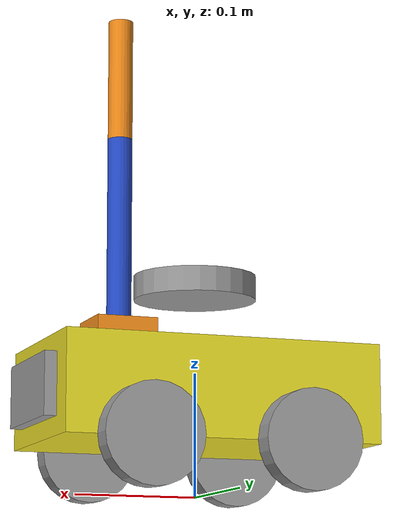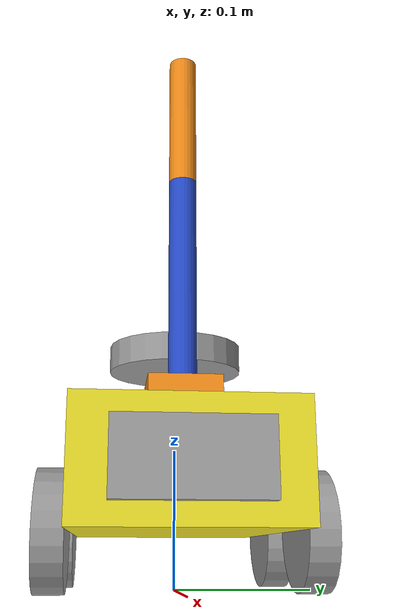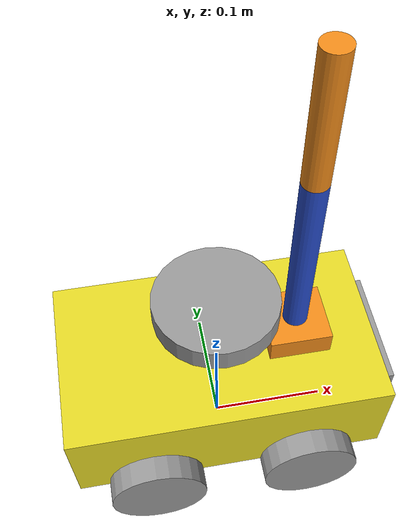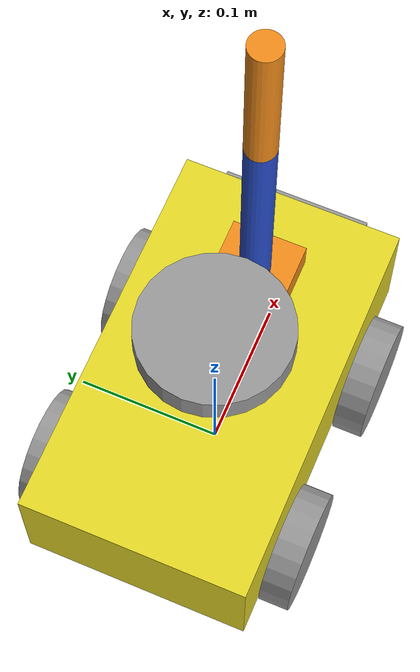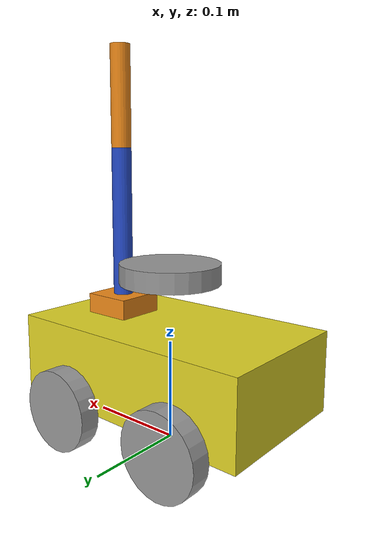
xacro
<?xml version="1.0"?>
<robot name="my_robot" xmlns:xacro="http://www.ros.org/wiki/xacro">

    <xacro:include filename="common_properties.xacro" />
    <xacro:include filename="mecanum_mobile_base.xacro" />
    <xacro:include filename="mecanum_mobile_base_gazebo.xacro" />
    <xacro:include filename="mecanum_arm.xacro" />
    <xacro:include filename="mecanum_arm_gazebo.xacro" />
    <xacro:include filename="camera.xacro" />
    <xacro:include filename="lidar.xacro" />

    <joint name="mobile_base_arm_joint" type="fixed">
        <parent link="base_link" />
        <child link="arm_base_link" />
        <origin xyz="${base_length / 4.0} 0 ${base_height}" rpy="0 0 0" />
    </joint>

</robot>

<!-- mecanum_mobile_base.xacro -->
<robot xmlns:xacro="http://www.ros.org/wiki/xacro">

    <xacro:property name="base_length" value="0.26" />
    <xacro:property name="base_width" value="0.15" />
    <xacro:property name="base_height" value="0.08" />
    <xacro:property name="wheel_radius" value="0.04" />
    <xacro:property name="wheel_length" value="0.02" />

    <link name="base_footprint" />
    <!-- collision and inertia box close to floor for lateral movements -->
    <link name="base_link">
        <visual>
            <geometry>
                <box size="${base_length} ${base_width} ${base_height}" />
            </geometry>
            <origin xyz="0 0 ${base_height / 2.0}" rpy="0 0 0" />
            <material name="yellow" />
        </visual>
        <collision>
            <geometry>
                <box size="${base_length} ${base_width} ${base_height}" />
            </geometry>
            <origin xyz="0 0 0.0" rpy="0 0 0" />
        </collision>
        <xacro:box_inertia m="4.0" l="${2*base_length}" w="${2*base_width}" h="${2*base_height}"
                           xyz="0 0 0.0" rpy="0 0 0" />
    </link>

    <xacro:macro name="wheel_link" params="prefix">
        <link name="${prefix}_wheel_link">
            <visual>
                <geometry>
                    <cylinder radius="${wheel_radius}" length="${wheel_length}" />
                </geometry>
                <origin xyz="0 0 0" rpy="${pi / 2.0} 0 0" />
                <material name="grey" />
            </visual>
            <collision>
                <geometry>
                    <cylinder radius="${wheel_radius}" length="${wheel_length}" />
                </geometry>
                <origin xyz="0 0 0" rpy="${pi / 2.0} 0 0" />
            </collision>
            <xacro:cylinder_inertia m="0.2" r="${2*wheel_radius}" h="${2*wheel_length}"
                                    xyz="0 0 0" rpy="${pi / 2.0} 0 0" />
        </link>
    </xacro:macro>

    <xacro:wheel_link prefix="lower_right" />
    <xacro:wheel_link prefix="lower_left" />
    <xacro:wheel_link prefix="upper_right" />
    <xacro:wheel_link prefix="upper_left" />

    <joint name="base_joint" type="fixed">
        <parent link="base_footprint" />
        <child link="base_link" />
        <origin xyz="0 0 ${wheel_radius}" rpy="0 0 0"/>
    </joint>

    <joint name="lower_right_wheel_joint" type="continuous">
        <parent link="base_link" />
        <child link="lower_right_wheel_link" />
        <origin xyz="${-base_length / 4.0} ${-(base_width + wheel_length) / 2.0} 0" rpy="0 0 0" />
        <axis xyz="0 1 0" />
    </joint>

    <joint name="lower_left_wheel_joint" type="continuous">
        <parent link="base_link" />
        <child link="lower_left_wheel_link" />
        <origin xyz="${-base_length / 4.0} ${(base_width + wheel_length) / 2.0} 0" rpy="0 0 0" />
        <axis xyz="0 1 0" />
    </joint>

    <joint name="upper_right_wheel_joint" type="continuous">
        <parent link="base_link" />
        <child link="upper_right_wheel_link" />
        <origin xyz="${base_length / 4.0} ${-(base_width + wheel_length) / 2.0} 0" rpy="0 0 0" />
        <axis xyz="0 1 0" />
    </joint>

    <joint name="upper_left_wheel_joint" type="continuous">
        <parent link="base_link" />
        <child link="upper_left_wheel_link" />
        <origin xyz="${base_length / 4.0} ${(base_width + wheel_length) / 2.0} 0" rpy="0 0 0" />
        <axis xyz="0 1 0" />
    </joint>

</robot>

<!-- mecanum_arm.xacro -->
<robot xmlns:xacro="http://www.ros.org/wiki/xacro">

    <xacro:property name="arm_base_length" value="0.05" />
    <xacro:property name="arm_base_width" value="0.05" />
    <xacro:property name="arm_base_height" value="0.02" />
    <xacro:property name="forearm_radius" value="0.01" />
    <xacro:property name="forearm_length" value="0.15" />
    <xacro:property name="hand_radius" value="0.01" />
    <xacro:property name="hand_length" value="0.1" />

    <link name="arm_base_link">
        <visual>
            <geometry>
                <box size="${arm_base_length} ${arm_base_width} ${arm_base_height}" />
            </geometry>
            <origin xyz="0 0 ${arm_base_height / 2.0}" rpy="0 0 0" />
            <material name="orange" />
        </visual>
        <collision>
            <geometry>
                <box size="${arm_base_length} ${arm_base_width} ${arm_base_height}" />
            </geometry>
            <origin xyz="0 0 ${arm_base_height / 2.0}" rpy="0 0 0" />
        </collision>
        <xacro:box_inertia m="0.1" l="${2*arm_base_length}" w="${2*arm_base_width}" h="${2*arm_base_height}"
                           xyz="0 0 ${arm_base_height / 2.0}" rpy="0 0 0" />
    </link>

    <link name="forearm_link">
        <visual>
            <geometry>
                <cylinder radius="${forearm_radius}" length="${forearm_length}" />
            </geometry>
            <origin xyz="0 0 ${forearm_length / 2.0}" rpy="0 0 0" />
            <material name="blue" />
        </visual>
        <collision>
            <geometry>
                <cylinder radius="${forearm_radius}" length="${forearm_length}" />
            </geometry>
            <origin xyz="0 0 ${forearm_length / 2.0}" rpy="0 0 0" />
        </collision>
        <xacro:cylinder_inertia m="0.1" r="${2*forearm_radius}" h="${2*forearm_length}"
                                xyz="0 0 ${forearm_length / 2.0}" rpy="0 0 0" />
    </link>

    <link name="hand_link">
        <visual>
            <geometry>
                <cylinder radius="${hand_radius}" length="${hand_length}" />
            </geometry>
            <origin xyz="0 0 ${hand_length / 2.0}" rpy="0 0 0" />
            <material name="orange" />
        </visual>
        <collision>
             <geometry>
                <cylinder radius="${hand_radius}" length="${hand_length}" />
            </geometry>
            <origin xyz="0 0 ${hand_length / 2.0}" rpy="0 0 0" />
        </collision>
        <xacro:cylinder_inertia m="0.1" r="${2*hand_radius}" h="${2*hand_length}"
                                xyz="0 0 ${hand_length / 2.0}" rpy="0 0 0" />
    </link>

    <joint name="arm_base_forearm_joint" type="revolute">
        <parent link="arm_base_link" />
        <child link="forearm_link" />
        <origin xyz="0 0 ${arm_base_height}" rpy="0 0 0" />
        <axis xyz="0 1 0" />
        <limit lower="0" upper="${pi/2}" effort="100" velocity="100" />
        <dynamics friction="0.05" damping="0.1" />
    </joint>

    <joint name="forearm_hand_joint" type="revolute">
        <parent link="forearm_link" />
        <child link="hand_link" />
        <origin xyz="0 0 ${forearm_length}" rpy="0 0 0" />
        <axis xyz="0 1 0" />
        <limit lower="0" upper="${pi/2}" effort="100" velocity="100" />
        <dynamics friction="0.05" damping="0.1" />
    </joint>

</robot>

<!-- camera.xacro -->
<robot xmlns:xacro="http://www.ros.org/wiki/xacro">

    <xacro:property name="camera_length" value="0.01" />
    <xacro:property name="camera_width" value="0.1" />
    <xacro:property name="camera_height" value="0.05" />

    <link name="camera_link">
        <visual>
            <geometry>
                <box size="${camera_length} ${camera_width} ${camera_height}" />
            </geometry>
            <material name="grey" />
        </visual>
        <collision>
            <geometry>
                <box size="${camera_length} ${camera_width} ${camera_height}" />
            </geometry>
        </collision>
        <xacro:box_inertia m="0.1" l="${camera_length}" w="${camera_width}" h="${camera_height}"
                           xyz="0 0 0" rpy="0 0 0" />
    </link>

    <joint name="base_camera_joint" type="fixed">
        <parent link="base_link" />
        <child link="camera_link" />
        <origin xyz="${(base_length + camera_length) / 2.0} 0 ${base_height / 2.0}" rpy="0 0 0" />
    </joint>

    <link name="camera_link_optical">
    </link>

    <joint name="camera_optical_joint" type="fixed">
        <!-- these values have to be these values otherwise the gazebo camera
            image won't be aligned properly with the frame it is supposedly
            originating from -->
        <origin xyz="0 0 0" rpy="${-pi/2} 0 ${-pi/2}"/>
        <parent link="camera_link"/>
        <child link="camera_link_optical"/>
    </joint>

    <gazebo reference="camera_link">
        <material>Gazebo/Red</material>
        <sensor name="camera_sensor" type="camera">
            <pose>0 0 0 0 0 0</pose>
            <visualize>false</visualize>
            <update_rate>10.0</update_rate>
            <plugin name="camera_controller" filename="libgazebo_ros_camera.so">
                <frame_name>camera_link_optical</frame_name>
            </plugin>
        </sensor>
    </gazebo>

</robot>

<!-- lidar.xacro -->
<robot xmlns:xacro="http://www.ros.org/wiki/xacro">

    <xacro:property name="lidar_radius" value="0.05" />
    <xacro:property name="lidar_length" value="0.02" />

    <link name="base_scan">
        <visual>
            <geometry>
                <cylinder radius="${lidar_radius}" length="${lidar_length}" />
            </geometry>
            <material name="grey" />
        </visual>
        <collision>
            <geometry>
                <cylinder radius="${lidar_radius}" length="${lidar_length}" />
            </geometry>
        </collision>
        <xacro:cylinder_inertia m="0.1" r="${2*lidar_radius}" h="${2*lidar_length}"
                                xyz="0 0 0" rpy="0 0 0" />
    </link>

    <joint name="base_scan_joint" type="fixed">
        <parent link="base_link" />
        <child link="base_scan" />
        <origin xyz="0 0 ${base_height+0.05}" rpy="0 0 3.14" />
    </joint>

    <gazebo reference="base_scan">
        <sensor name="lidar" type="ray">
        <pose>0.215 0 0.215 0 0 0</pose>
        <always_on>true</always_on>
        <visualize>false</visualize>
        <update_rate>5</update_rate>
        <ray>
            <scan>
                <horizontal>
                    <samples>720</samples>
                    <resolution>1.00000</resolution>
                    <min_angle>0.000000</min_angle>
                    <max_angle>6.280000</max_angle>
                </horizontal>
            </scan>
            <range>
                <min>0.120000</min>
                <max>3.5</max>
                <resolution>0.015000</resolution>
            </range>
            <noise>
                <type>gaussian</type>
                <mean>0.0</mean>
                <stddev>0.01</stddev>
            </noise>
        </ray>
        <plugin name="scan" filename="libgazebo_ros_ray_sensor.so">
            <ros>
                <remapping>~/out:=scan</remapping>
            </ros>
            <output_type>sensor_msgs/LaserScan</output_type>
            <frame_name>base_scan</frame_name>
        </plugin>
        </sensor>
    </gazebo>

</robot>
